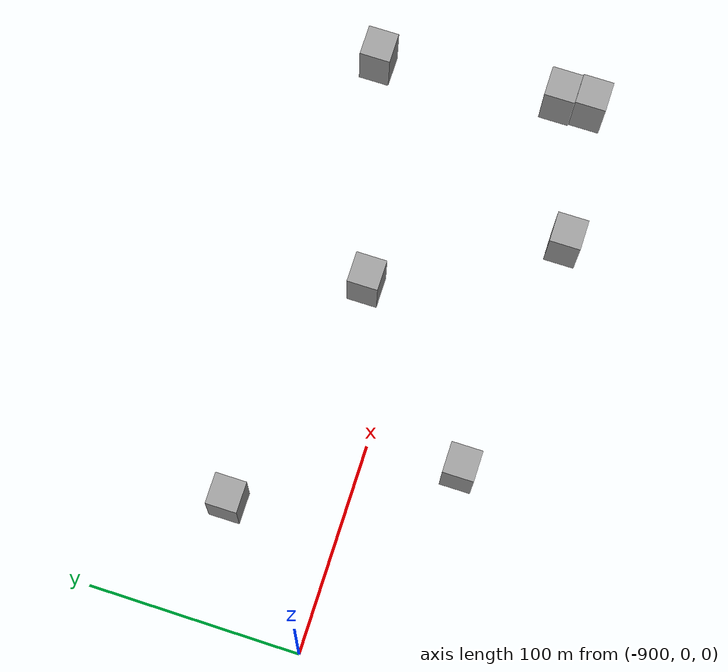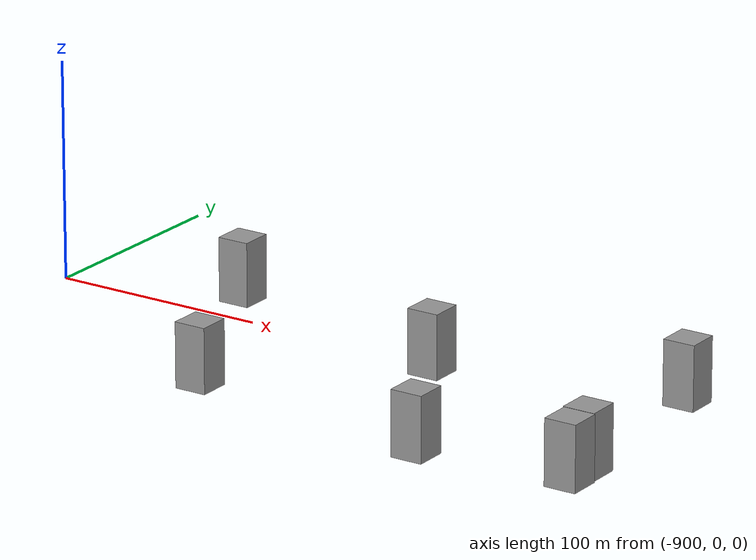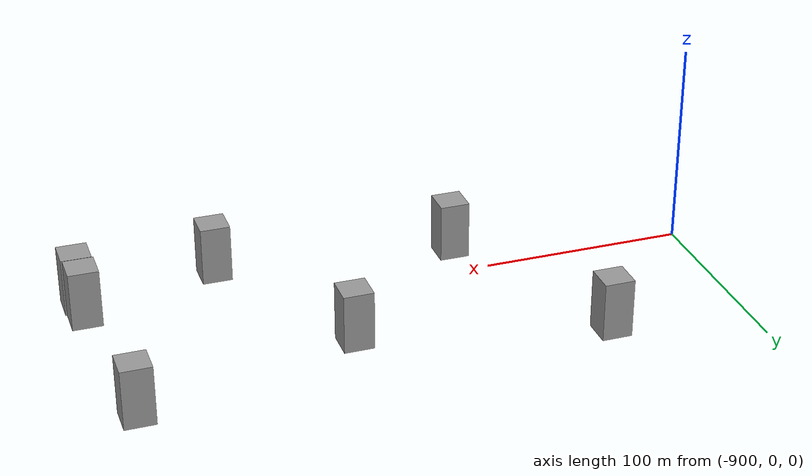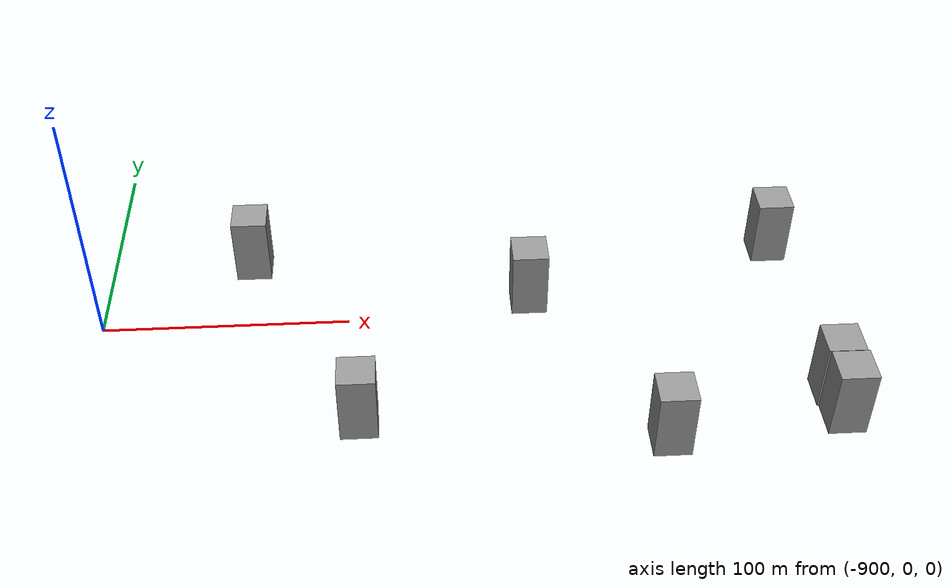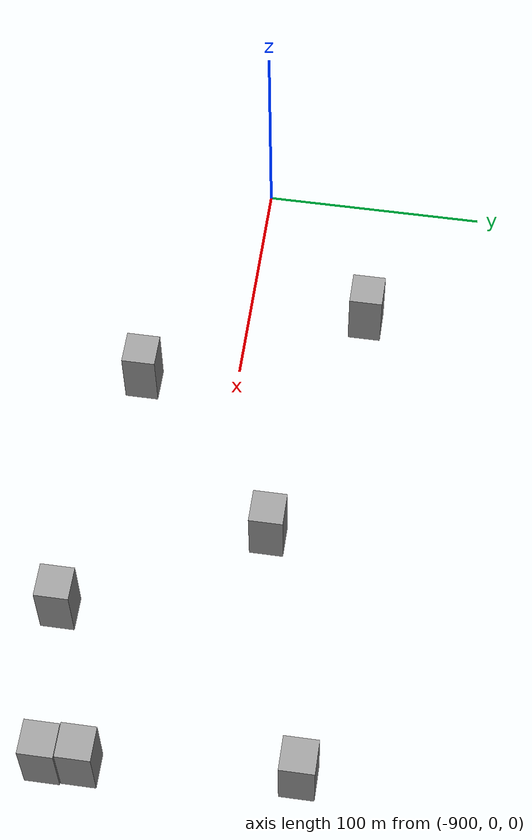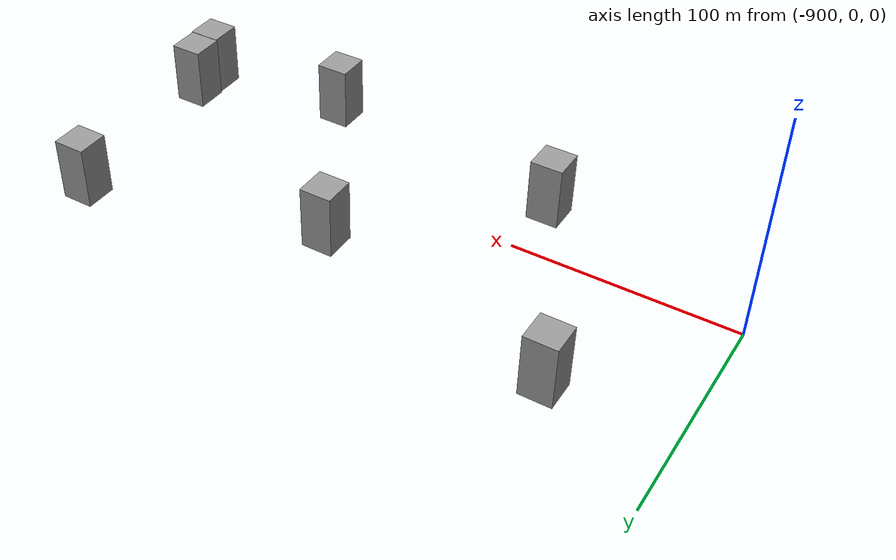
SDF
<sdf version="1.7">
 <world name="usv_world">
  <model name="box_obstacle_clone_4_clone_12_clone_15">
   <link name="link">
    <inertial>
     <mass>1</mass>
     <inertia>
      <ixx>0.166667</ixx>
      <ixy>0</ixy>
      <ixz>0</ixz>
      <iyy>0.166667</iyy>
      <iyz>0</iyz>
      <izz>0.166667</izz>
     </inertia>
    </inertial>
    <gravity>0</gravity>
    <visual name="visual">
     <geometry><box><size>15 15 30</size></box></geometry>
     <material>
      <script><name>Gazebo/Grey</name><uri>file://media/materials/scripts/gazebo.material</uri></script>
      <shader type="pixel"><normal_map>__default__</normal_map></shader>
      <ambient>0.3 0.3 0.3 1</ambient>
      <diffuse>0.7 0.7 0.7 1</diffuse>
      <specular>0.01 0.01 0.01 1</specular>
      <emissive>0 0 0 1</emissive>
     </material>
    </visual>
    <collision name="collision">
     <geometry><box><size>15 15 30</size></box></geometry>
     <surface>
      <friction>
       <ode><mu>1</mu><mu2>1</mu2><fdir1>0 0 0</fdir1><slip1>0</slip1><slip2>0</slip2></ode>
       <torsional>
        <coefficient>1</coefficient>
        <patch_radius>0</patch_radius>
        <surface_radius>0</surface_radius>
        <use_patch_radius>1</use_patch_radius>
        <ode><slip>0</slip></ode>
       </torsional>
      </friction>
      <bounce><restitution_coefficient>0</restitution_coefficient><threshold>1e+06</threshold></bounce>
      <contact>
       <collide_without_contact>0</collide_without_contact>
       <collide_without_contact_bitmask>1</collide_without_contact_bitmask>
       <collide_bitmask>1</collide_bitmask>
       <ode>
        <soft_cfm>0</soft_cfm>
        <soft_erp>0.2</soft_erp>
        <kp>1e+13</kp>
        <kd>1</kd>
        <max_vel>0.01</max_vel>
        <min_depth>0</min_depth>
       </ode>
       <bullet>
        <split_impulse>1</split_impulse>
        <split_impulse_penetration_threshold>-0.01</split_impulse_penetration_threshold>
        <soft_cfm>0</soft_cfm>
        <soft_erp>0.2</soft_erp>
        <kp>1e+13</kp>
        <kd>1</kd>
       </bullet>
      </contact>
     </surface>
    </collision>
   </link>
   <static>0</static>
   <pose>-796.244 -44.2969 0.5 0 -0 0</pose>
  </model>
  <model name="box_obstacle_clone_4_clone_12_clone_16">
   <link name="link">
    <inertial>
     <mass>1</mass>
     <inertia>
      <ixx>0.166667</ixx>
      <ixy>0</ixy>
      <ixz>0</ixz>
      <iyy>0.166667</iyy>
      <iyz>0</iyz>
      <izz>0.166667</izz>
     </inertia>
    </inertial>
    <gravity>0</gravity>
    <visual name="visual">
     <geometry><box><size>15 15 30</size></box></geometry>
     <material>
      <script><name>Gazebo/Grey</name><uri>file://media/materials/scripts/gazebo.material</uri></script>
      <shader type="pixel"><normal_map>__default__</normal_map></shader>
      <ambient>0.3 0.3 0.3 1</ambient>
      <diffuse>0.7 0.7 0.7 1</diffuse>
      <specular>0.01 0.01 0.01 1</specular>
      <emissive>0 0 0 1</emissive>
     </material>
    </visual>
    <collision name="collision">
     <geometry><box><size>15 15 30</size></box></geometry>
     <surface>
      <friction>
       <ode><mu>1</mu><mu2>1</mu2><fdir1>0 0 0</fdir1><slip1>0</slip1><slip2>0</slip2></ode>
       <torsional>
        <coefficient>1</coefficient>
        <patch_radius>0</patch_radius>
        <surface_radius>0</surface_radius>
        <use_patch_radius>1</use_patch_radius>
        <ode><slip>0</slip></ode>
       </torsional>
      </friction>
      <bounce><restitution_coefficient>0</restitution_coefficient><threshold>1e+06</threshold></bounce>
      <contact>
       <collide_without_contact>0</collide_without_contact>
       <collide_without_contact_bitmask>1</collide_without_contact_bitmask>
       <collide_bitmask>1</collide_bitmask>
       <ode>
        <soft_cfm>0</soft_cfm>
        <soft_erp>0.2</soft_erp>
        <kp>1e+13</kp>
        <kd>1</kd>
        <max_vel>0.01</max_vel>
        <min_depth>0</min_depth>
       </ode>
       <bullet>
        <split_impulse>1</split_impulse>
        <split_impulse_penetration_threshold>-0.01</split_impulse_penetration_threshold>
        <soft_cfm>0</soft_cfm>
        <soft_erp>0.2</soft_erp>
        <kp>1e+13</kp>
        <kd>1</kd>
       </bullet>
      </contact>
     </surface>
    </collision>
   </link>
   <static>0</static>
   <pose>-842.774 53.3853 0.5 0 -0 0</pose>
  </model>
  <model name="box_obstacle_clone_4_clone_12_clone_17">
   <link name="link">
    <inertial>
     <mass>1</mass>
     <inertia>
      <ixx>0.166667</ixx>
      <ixy>0</ixy>
      <ixz>0</ixz>
      <iyy>0.166667</iyy>
      <iyz>0</iyz>
      <izz>0.166667</izz>
     </inertia>
    </inertial>
    <gravity>0</gravity>
    <visual name="visual">
     <geometry><box><size>15 15 30</size></box></geometry>
     <material>
      <script><name>Gazebo/Grey</name><uri>file://media/materials/scripts/gazebo.material</uri></script>
      <shader type="pixel"><normal_map>__default__</normal_map></shader>
      <ambient>0.3 0.3 0.3 1</ambient>
      <diffuse>0.7 0.7 0.7 1</diffuse>
      <specular>0.01 0.01 0.01 1</specular>
      <emissive>0 0 0 1</emissive>
     </material>
    </visual>
    <collision name="collision">
     <geometry><box><size>15 15 30</size></box></geometry>
     <surface>
      <friction>
       <ode><mu>1</mu><mu2>1</mu2><fdir1>0 0 0</fdir1><slip1>0</slip1><slip2>0</slip2></ode>
       <torsional>
        <coefficient>1</coefficient>
        <patch_radius>0</patch_radius>
        <surface_radius>0</surface_radius>
        <use_patch_radius>1</use_patch_radius>
        <ode><slip>0</slip></ode>
       </torsional>
      </friction>
      <bounce><restitution_coefficient>0</restitution_coefficient><threshold>1e+06</threshold></bounce>
      <contact>
       <collide_without_contact>0</collide_without_contact>
       <collide_without_contact_bitmask>1</collide_without_contact_bitmask>
       <collide_bitmask>1</collide_bitmask>
       <ode>
        <soft_cfm>0</soft_cfm>
        <soft_erp>0.2</soft_erp>
        <kp>1e+13</kp>
        <kd>1</kd>
        <max_vel>0.01</max_vel>
        <min_depth>0</min_depth>
       </ode>
       <bullet>
        <split_impulse>1</split_impulse>
        <split_impulse_penetration_threshold>-0.01</split_impulse_penetration_threshold>
        <soft_cfm>0</soft_cfm>
        <soft_erp>0.2</soft_erp>
        <kp>1e+13</kp>
        <kd>1</kd>
       </bullet>
      </contact>
     </surface>
    </collision>
   </link>
   <static>0</static>
   <pose>-723.683 24.4688 0.5 0 -0 0</pose>
  </model>
  <model name="box_obstacle_clone_4_clone_12_clone_20">
   <link name="link">
    <inertial>
     <mass>1</mass>
     <inertia>
      <ixx>0.166667</ixx>
      <ixy>0</ixy>
      <ixz>0</ixz>
      <iyy>0.166667</iyy>
      <iyz>0</iyz>
      <izz>0.166667</izz>
     </inertia>
    </inertial>
    <gravity>0</gravity>
    <visual name="visual">
     <geometry><box><size>15 15 30</size></box></geometry>
     <material>
      <script><name>Gazebo/Grey</name><uri>file://media/materials/scripts/gazebo.material</uri></script>
      <shader type="pixel"><normal_map>__default__</normal_map></shader>
      <ambient>0.3 0.3 0.3 1</ambient>
      <diffuse>0.7 0.7 0.7 1</diffuse>
      <specular>0.01 0.01 0.01 1</specular>
      <emissive>0 0 0 1</emissive>
     </material>
    </visual>
    <collision name="collision">
     <geometry><box><size>15 15 30</size></box></geometry>
     <surface>
      <friction>
       <ode><mu>1</mu><mu2>1</mu2><fdir1>0 0 0</fdir1><slip1>0</slip1><slip2>0</slip2></ode>
       <torsional>
        <coefficient>1</coefficient>
        <patch_radius>0</patch_radius>
        <surface_radius>0</surface_radius>
        <use_patch_radius>1</use_patch_radius>
        <ode><slip>0</slip></ode>
       </torsional>
      </friction>
      <bounce><restitution_coefficient>0</restitution_coefficient><threshold>1e+06</threshold></bounce>
      <contact>
       <collide_without_contact>0</collide_without_contact>
       <collide_without_contact_bitmask>1</collide_without_contact_bitmask>
       <collide_bitmask>1</collide_bitmask>
       <ode>
        <soft_cfm>0</soft_cfm>
        <soft_erp>0.2</soft_erp>
        <kp>1e+13</kp>
        <kd>1</kd>
        <max_vel>0.01</max_vel>
        <min_depth>0</min_depth>
       </ode>
       <bullet>
        <split_impulse>1</split_impulse>
        <split_impulse_penetration_threshold>-0.01</split_impulse_penetration_threshold>
        <soft_cfm>0</soft_cfm>
        <soft_erp>0.2</soft_erp>
        <kp>1e+13</kp>
        <kd>1</kd>
       </bullet>
      </contact>
     </surface>
    </collision>
   </link>
   <static>0</static>
   <pose>-605.892 -51.9618 0.5 0 -0 0</pose>
  </model>
  <model name="box_obstacle_clone_4_clone_12_clone_21">
   <link name="link">
    <inertial>
     <mass>1</mass>
     <inertia>
      <ixx>0.166667</ixx>
      <ixy>0</ixy>
      <ixz>0</ixz>
      <iyy>0.166667</iyy>
      <iyz>0</iyz>
      <izz>0.166667</izz>
     </inertia>
    </inertial>
    <gravity>0</gravity>
    <visual name="visual">
     <geometry><box><size>15 15 30</size></box></geometry>
     <material>
      <script><name>Gazebo/Grey</name><uri>file://media/materials/scripts/gazebo.material</uri></script>
      <shader type="pixel"><normal_map>__default__</normal_map></shader>
      <ambient>0.3 0.3 0.3 1</ambient>
      <diffuse>0.7 0.7 0.7 1</diffuse>
      <specular>0.01 0.01 0.01 1</specular>
      <emissive>0 0 0 1</emissive>
     </material>
    </visual>
    <collision name="collision">
     <geometry><box><size>15 15 30</size></box></geometry>
     <surface>
      <friction>
       <ode><mu>1</mu><mu2>1</mu2><fdir1>0 0 0</fdir1><slip1>0</slip1><slip2>0</slip2></ode>
       <torsional>
        <coefficient>1</coefficient>
        <patch_radius>0</patch_radius>
        <surface_radius>0</surface_radius>
        <use_patch_radius>1</use_patch_radius>
        <ode><slip>0</slip></ode>
       </torsional>
      </friction>
      <bounce><restitution_coefficient>0</restitution_coefficient><threshold>1e+06</threshold></bounce>
      <contact>
       <collide_without_contact>0</collide_without_contact>
       <collide_without_contact_bitmask>1</collide_without_contact_bitmask>
       <collide_bitmask>1</collide_bitmask>
       <ode>
        <soft_cfm>0</soft_cfm>
        <soft_erp>0.2</soft_erp>
        <kp>1e+13</kp>
        <kd>1</kd>
        <max_vel>0.01</max_vel>
        <min_depth>0</min_depth>
       </ode>
       <bullet>
        <split_impulse>1</split_impulse>
        <split_impulse_penetration_threshold>-0.01</split_impulse_penetration_threshold>
        <soft_cfm>0</soft_cfm>
        <soft_erp>0.2</soft_erp>
        <kp>1e+13</kp>
        <kd>1</kd>
       </bullet>
      </contact>
     </surface>
    </collision>
   </link>
   <static>0</static>
   <pose>-606.605 -36.748 0.5 0 -0 0</pose>
  </model>
  <model name="box_obstacle_clone_4_clone_12_clone_22">
   <link name="link">
    <inertial>
     <mass>1</mass>
     <inertia>
      <ixx>0.166667</ixx>
      <ixy>0</ixy>
      <ixz>0</ixz>
      <iyy>0.166667</iyy>
      <iyz>0</iyz>
      <izz>0.166667</izz>
     </inertia>
    </inertial>
    <gravity>0</gravity>
    <visual name="visual">
     <geometry><box><size>15 15 30</size></box></geometry>
     <material>
      <script><name>Gazebo/Grey</name><uri>file://media/materials/scripts/gazebo.material</uri></script>
      <shader type="pixel"><normal_map>__default__</normal_map></shader>
      <ambient>0.3 0.3 0.3 1</ambient>
      <diffuse>0.7 0.7 0.7 1</diffuse>
      <specular>0.01 0.01 0.01 1</specular>
      <emissive>0 0 0 1</emissive>
     </material>
    </visual>
    <collision name="collision">
     <geometry><box><size>15 15 30</size></box></geometry>
     <surface>
      <friction>
       <ode><mu>1</mu><mu2>1</mu2><fdir1>0 0 0</fdir1><slip1>0</slip1><slip2>0</slip2></ode>
       <torsional>
        <coefficient>1</coefficient>
        <patch_radius>0</patch_radius>
        <surface_radius>0</surface_radius>
        <use_patch_radius>1</use_patch_radius>
        <ode><slip>0</slip></ode>
       </torsional>
      </friction>
      <bounce><restitution_coefficient>0</restitution_coefficient><threshold>1e+06</threshold></bounce>
      <contact>
       <collide_without_contact>0</collide_without_contact>
       <collide_without_contact_bitmask>1</collide_without_contact_bitmask>
       <collide_bitmask>1</collide_bitmask>
       <ode>
        <soft_cfm>0</soft_cfm>
        <soft_erp>0.2</soft_erp>
        <kp>1e+13</kp>
        <kd>1</kd>
        <max_vel>0.01</max_vel>
        <min_depth>0</min_depth>
       </ode>
       <bullet>
        <split_impulse>1</split_impulse>
        <split_impulse_penetration_threshold>-0.01</split_impulse_penetration_threshold>
        <soft_cfm>0</soft_cfm>
        <soft_erp>0.2</soft_erp>
        <kp>1e+13</kp>
        <kd>1</kd>
       </bullet>
      </contact>
     </surface>
    </collision>
   </link>
   <static>0</static>
   <pose>-675.92 -59.7136 0.5 0 -0 0</pose>
  </model>
  <model name="box_obstacle_clone_4_clone_12_clone_23">
   <link name="link">
    <inertial>
     <mass>1</mass>
     <inertia>
      <ixx>0.166667</ixx>
      <ixy>0</ixy>
      <ixz>0</ixz>
      <iyy>0.166667</iyy>
      <iyz>0</iyz>
      <izz>0.166667</izz>
     </inertia>
    </inertial>
    <gravity>0</gravity>
    <visual name="visual">
     <geometry><box><size>15 15 30</size></box></geometry>
     <material>
      <script><name>Gazebo/Grey</name><uri>file://media/materials/scripts/gazebo.material</uri></script>
      <shader type="pixel"><normal_map>__default__</normal_map></shader>
      <ambient>0.3 0.3 0.3 1</ambient>
      <diffuse>0.7 0.7 0.7 1</diffuse>
      <specular>0.01 0.01 0.01 1</specular>
      <emissive>0 0 0 1</emissive>
     </material>
    </visual>
    <collision name="collision">
     <geometry><box><size>15 15 30</size></box></geometry>
     <surface>
      <friction>
       <ode><mu>1</mu><mu2>1</mu2><fdir1>0 0 0</fdir1><slip1>0</slip1><slip2>0</slip2></ode>
       <torsional>
        <coefficient>1</coefficient>
        <patch_radius>0</patch_radius>
        <surface_radius>0</surface_radius>
        <use_patch_radius>1</use_patch_radius>
        <ode><slip>0</slip></ode>
       </torsional>
      </friction>
      <bounce><restitution_coefficient>0</restitution_coefficient><threshold>1e+06</threshold></bounce>
      <contact>
       <collide_without_contact>0</collide_without_contact>
       <collide_without_contact_bitmask>1</collide_without_contact_bitmask>
       <collide_bitmask>1</collide_bitmask>
       <ode>
        <soft_cfm>0</soft_cfm>
        <soft_erp>0.2</soft_erp>
        <kp>1e+13</kp>
        <kd>1</kd>
        <max_vel>0.01</max_vel>
        <min_depth>0</min_depth>
       </ode>
       <bullet>
        <split_impulse>1</split_impulse>
        <split_impulse_penetration_threshold>-0.01</split_impulse_penetration_threshold>
        <soft_cfm>0</soft_cfm>
        <soft_erp>0.2</soft_erp>
        <kp>1e+13</kp>
        <kd>1</kd>
       </bullet>
      </contact>
     </surface>
    </collision>
   </link>
   <static>0</static>
   <pose>-613.632 53.3121 0.5 0 -0 0</pose>
  </model>
 </world>
</sdf>
